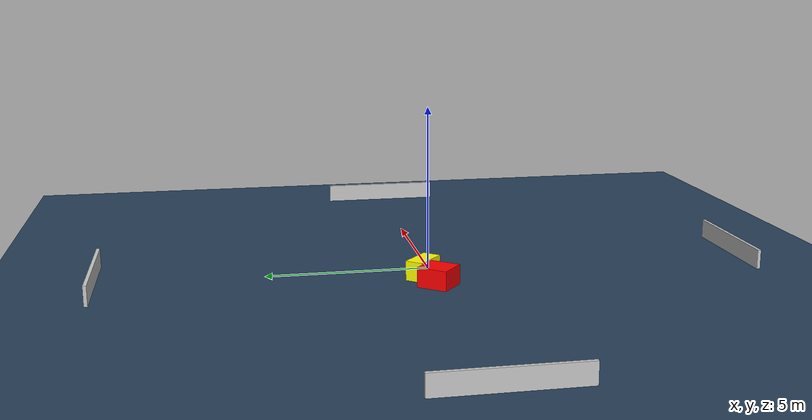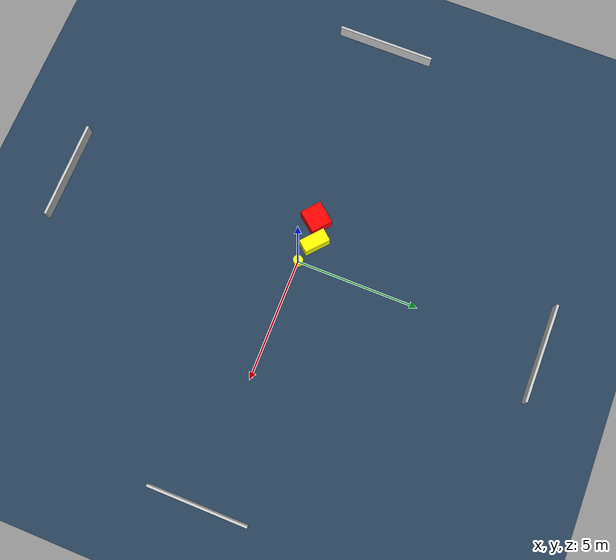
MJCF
<?xml version="1.0" ?>
<mujoco model="generated_environment">
  <option timestep="0.01" integrator="RK4" cone="elliptic"/>
  <default>
    <geom density="1"/>
  </default>
  <asset>
    <texture builtin="gradient" height="3072" name="skybox" rgb1="0.3 0.5 0.7" rgb2="0 0 0" type="skybox" width="512"/>
    <texture builtin="checker" height="300" name="groundplane" rgb1="0.2 0.3 0.4" rgb2="0.1 0.2 0.3" type="2d" width="300"/>
    <material name="groundplane" reflectance="0.2" texrepeat="5 5" texture="groundplane"/>
  </asset>
  <worldbody>
    <light dir="0 0 -1" directional="true" pos="0 0 1.5"/>
    <geom condim="3" friction="0.5 0.005 0.001" material="groundplane" name="floor" pos="0 0 0" size="0 0 0.05" type="plane"/>
    <body name="walls">
      <geom name="wall_1" condim="4" pos="-10.0 0.0 0.3" rgba="0.800000011920929 0.800000011920929 0.800000011920929 1.0" size="0.05 2.0 0.3" type="box"/>
      <geom name="wall_2" condim="4" pos="10.0 0.0 0.3" rgba="0.800000011920929 0.800000011920929 0.800000011920929 1.0" size="0.05 2.0 0.3" type="box"/>
      <geom name="wall_3" condim="4" pos="0.0 -10.0 0.3" rgba="0.800000011920929 0.800000011920929 0.800000011920929 1.0" size="2.0 0.05 0.3" type="box"/>
      <geom name="wall_4" condim="4" pos="0.0 10.0 0.3" rgba="0.800000011920929 0.800000011920929 0.800000011920929 1.0" size="2.0 0.05 0.3" type="box"/>
    </body>
    <body name="robot">
      <joint name="joint_x" type="slide" pos="0 0 0" axis="1 0 0"/>
      <joint name="joint_y" type="slide" pos="0 0 0" axis="0 1 0"/>
      <geom name="robot" type="cylinder" pos="0.0 0.0 0.2" size="0.2 0.2 0.0" mass="5.0" friction="1.0 0.005 0.0001" condim="4" rgba="1.0 1.0 0.0 1.0"/>
    </body>
    <body name="obstacle_1_movable">
      <geom name="obstacle_1_movable" condim="4" pos="-0.9281835643840743 0.3340551290249735 0.3" euler="0 0 139.25946734919538" friction="0.0 0.005 0.001" rgba="1.0 1.0 0.0 1.0" size="0.5405733304407073 0.27673146501495605 0.3" type="box" mass="0.1"/>
      <joint type="free"/>
    </body>
    <body name="obstacle_2_static">
      <geom name="obstacle_2_static" condim="4" pos="-1.8549051952069944 0.04453747817305466 0.3" euler="0 0 230.66848575638463" friction="0.0 0.005 0.001" rgba="1.0 0.0 0.0 1.0" size="0.4761178154586568 0.44430821987463565 0.3" type="box"/>
    </body>
  </worldbody>
  <actuator>
    <motor name="actuator_x" joint="joint_x" gear="1" ctrlrange="-1 1"/>
    <motor name="actuator_y" joint="joint_y" gear="1" ctrlrange="-1 1"/>
  </actuator>
</mujoco>
